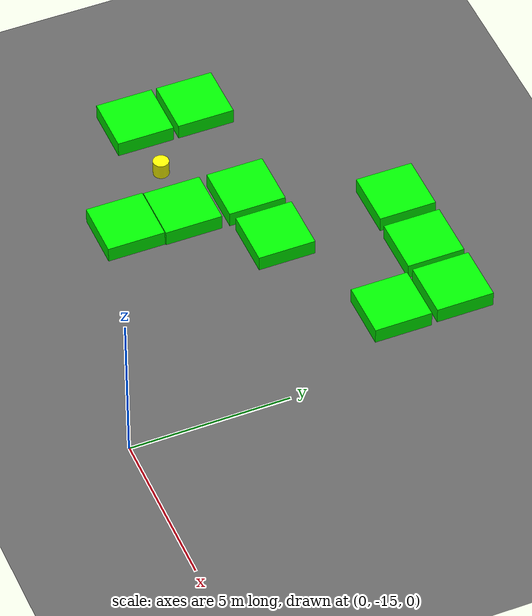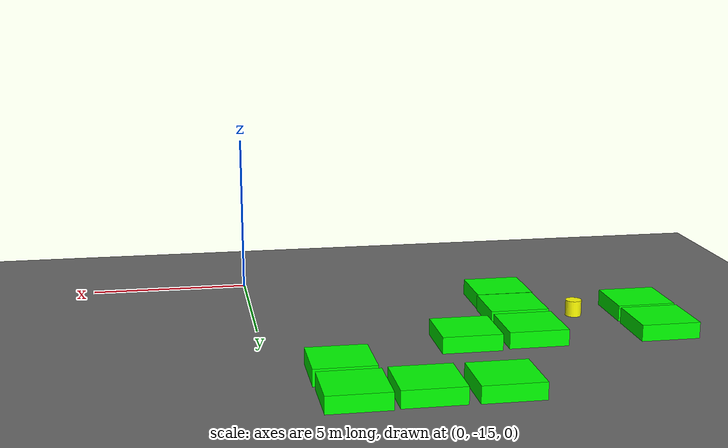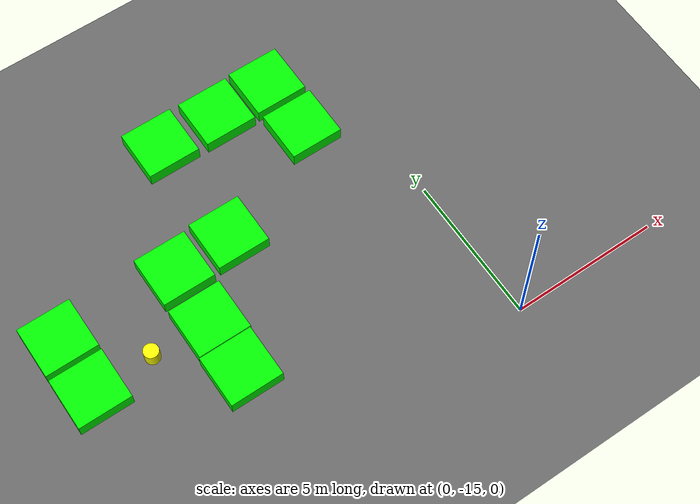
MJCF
<mujoco model="lvl5_corridor_obs10_dmid_depth2_seed2080">
    <compiler angle="degree" coordinate="local" inertiafromgeom="true"/>
    <option integrator="RK4" timestep="0.01"/>

    <asset>
        <texture builtin="gradient" height="100" rgb1="0.6 0.8 1" rgb2="0 0 0" type="skybox" width="100"/>
        <texture name="floor_texture" type="2d" builtin="checker" width="100" height="100" rgb1="0 0 0" rgb2="0.8 0.8 0.8"/>
        <material name="MatPlane" reflectance="0.5" shininess="1" specular="1" texrepeat="10 10" texture="floor_texture"/>
    </asset>

    <!-- Excluding the contact between the agent and the goal, and the agent and the floor -->
    <contact>
        <exclude body1="agent" body2="goal"/>
        <exclude body1 = "agent" body2 = "floor"/>
    </contact>

    <extension>
        <plugin plugin = "mujoco.pid">
            <instance name = "pid1">
                <config key="kp" value="2"/>
                <config key="ki" value="0"/>
                <config key="kd" value="55"/>
            </instance>
        </plugin>
    </extension>

    <worldbody>
        <light cutoff="100" diffuse="1 1 1" dir="-0 0 -1.3" directional="true" exponent="1" pos="0 0 1.3" specular=".1 .1 .1"/>
        <body name="floor" pos="0 0 0">
            <geom name="floor_geom" type="plane" size="20 20 0.1" material="MatPlane"/>
        </body>

                <body name="goal" pos="0.0000 0.0000 0">
            <geom name="goal_geom" type="plane" size="0.5 0.5 1" pos="0 0 0" rgba="1 0 0 1"/>
        </body>

                <body name="agent" pos="-10.0000 -10.0000 0.250">
            <joint name="j1" type="slide" axis ="1 0 0 "/>
            <joint name="j2" type="slide" axis ="0 1 0 "/>
            <geom name="agent_geom" type="cylinder" size="0.25 0.25 0.250" rgba="1 1 0 1"/>
        </body>

        <body name="obstacle1" pos="-6.0918 -4.0164 0.250">  <geom name="obstacle1_geom" type="box" size="0.9000 0.9000 0.250" rgba="0 1 0 1"/></body>
        <body name="obstacle2" pos="-3.9819 -4.0373 0.250">  <geom name="obstacle2_geom" type="box" size="0.9000 0.9000 0.250" rgba="0 1 0 1"/></body>
        <body name="obstacle3" pos="-2.0129 -3.9794 0.250">  <geom name="obstacle3_geom" type="box" size="0.9000 0.9000 0.250" rgba="0 1 0 1"/></body>
        <body name="obstacle4" pos="-1.9655 -5.9722 0.250">  <geom name="obstacle4_geom" type="box" size="0.9000 0.9000 0.250" rgba="0 1 0 1"/></body>
        <body name="obstacle5" pos="-12.0720 -8.0592 0.250">  <geom name="obstacle5_geom" type="box" size="0.9000 0.9000 0.250" rgba="0 1 0 1"/></body>
        <body name="obstacle6" pos="-8.0177 -8.0594 0.250">  <geom name="obstacle6_geom" type="box" size="0.9000 0.9000 0.250" rgba="0 1 0 1"/></body>
        <body name="obstacle7" pos="-5.9933 -7.9568 0.250">  <geom name="obstacle7_geom" type="box" size="0.9000 0.9000 0.250" rgba="0 1 0 1"/></body>
        <body name="obstacle8" pos="-12.0722 -10.0159 0.250">  <geom name="obstacle8_geom" type="box" size="0.9000 0.9000 0.250" rgba="0 1 0 1"/></body>
        <body name="obstacle9" pos="-8.0251 -10.0977 0.250">  <geom name="obstacle9_geom" type="box" size="0.9000 0.9000 0.250" rgba="0 1 0 1"/></body>
        <body name="obstacle10" pos="-8.0579 -11.9183 0.250">  <geom name="obstacle10_geom" type="box" size="0.9000 0.9000 0.250" rgba="0 1 0 1"/></body>

    </worldbody>

    <sensor>
<!-- SENSORS -->

        <distance name="dist1" geom1="agent_geom" geom2="obstacle1_geom" cutoff="1.5"/>
        <distance name="dist2" geom1="agent_geom" geom2="obstacle2_geom" cutoff="1.5"/>
        <distance name="dist3" geom1="agent_geom" geom2="obstacle3_geom" cutoff="1.5"/>
        <distance name="dist4" geom1="agent_geom" geom2="obstacle4_geom" cutoff="1.5"/>
        <distance name="dist5" geom1="agent_geom" geom2="obstacle5_geom" cutoff="1.5"/>
        <distance name="dist6" geom1="agent_geom" geom2="obstacle6_geom" cutoff="1.5"/>
        <distance name="dist7" geom1="agent_geom" geom2="obstacle7_geom" cutoff="1.5"/>
        <distance name="dist8" geom1="agent_geom" geom2="obstacle8_geom" cutoff="1.5"/>
        <distance name="dist9" geom1="agent_geom" geom2="obstacle9_geom" cutoff="1.5"/>
        <distance name="dist10" geom1="agent_geom" geom2="obstacle10_geom" cutoff="1.5"/>
</sensor>

    <actuator>
        <plugin joint="j1" plugin="mujoco.pid" instance="pid1" />
        <plugin joint="j2" plugin="mujoco.pid" instance="pid1"/>
    </actuator>
</mujoco>
